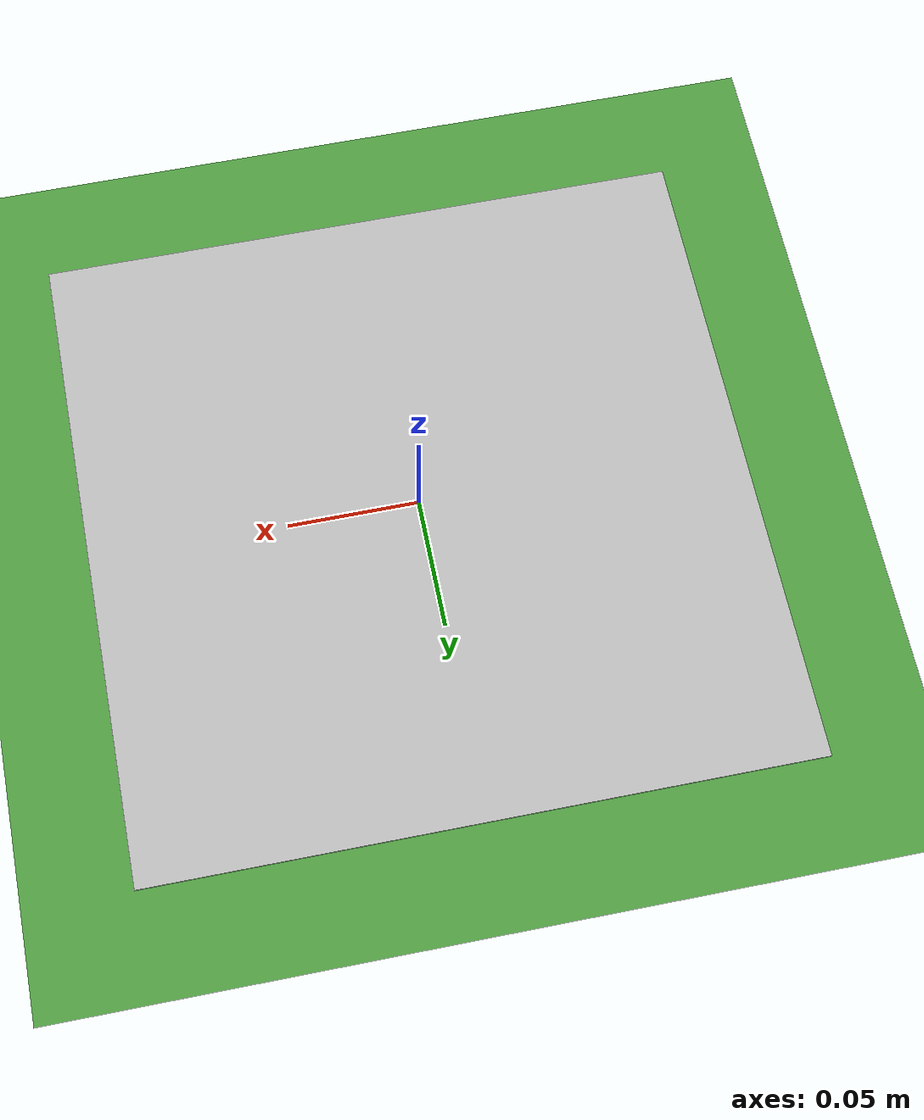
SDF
<?xml version="1.0" ?>
<?xml-model href="http://sdformat.org/schemas/root.xsd" schematypens="http://www.w3.org/2001/XMLSchema"?>
<sdf version="1.5">
  <world name="default">
<!--plugin name="ros_link_attacher_plugin" filename="libgazebo_ros_link_attacher.so"/-->
    <spherical_coordinates>
      <surface_model>EARTH_WGS84</surface_model>
      <latitude_deg>37.411802</latitude_deg>
      <longitude_deg>-121.995739</longitude_deg>
      <elevation>0.0</elevation>
      <heading_deg>0</heading_deg>
    </spherical_coordinates>

    <physics name="default_physics" default="0" type="ode">
      <gravity>0 0 -9.8066</gravity>
      <ode>
        <solver>
          <type>quick</type>
          <iters>50</iters>
          <sor>1.0</sor>
          <use_dynamic_moi_rescaling>0</use_dynamic_moi_rescaling>
        </solver>
        <constraints>
          <cfm>0</cfm>
          <erp>0.2</erp>
          <contact_max_correcting_vel>1000</contact_max_correcting_vel>
          <contact_surface_layer>0.001</contact_surface_layer>
        </constraints>
      </ode>
      <max_step_size>0.002</max_step_size>
      <real_time_factor>1</real_time_factor>
      <real_time_update_rate>500</real_time_update_rate>
      <magnetic_field>6.0e-06 2.3e-05 -4.2e-05</magnetic_field>
    </physics>

    <scene>
      <shadows>false</shadows>
      <sky>
        <clouds/>
      </sky>
    </scene>

    <light type="directional" name="sun">
      <cast_shadows>false</cast_shadows>
      <pose>250 250 600 0 0 0</pose>
      <diffuse>0.8 0.8 0.8 1</diffuse>
      <specular>0.2 0.2 0.2 1</specular>
      <attenuation>
        <range>1000</range>
        <constant>0.9</constant>
        <linear>0.01</linear>
        <quadratic>0.001</quadratic>
      </attenuation>
      <direction>0 0 -1</direction>
    </light>

    <model name="ground_plane">
      <static>true</static>
      <link name="link">
        <collision name="collision">
          <pose>0 0 0 0 0 0</pose>
          <geometry>
            <plane>
              <normal>0 0 1</normal>
              <size>250 250</size>
            </plane>
          </geometry>
          <surface>
            <friction>
              <ode>
                <mu>1</mu>
                <mu2>1</mu2>
              </ode>
            </friction>
          </surface>
        </collision>
        <visual name="grass">
          <pose>0 0 0 0 0 0</pose>
          <cast_shadows>false</cast_shadows>
          <geometry>
            <plane>
              <normal>0 0 1</normal>
              <size>150 250</size>
            </plane>
          </geometry>
          <material>
            <script>
              <uri>file://media/materials/scripts/Gazebo.material</uri>
              <name>Gazebo/Grass</name>
            </script>
          </material>
        </visual>
      </link>
    </model>

  <model name="apriltag">
	  <static>1</static>
	<link name="link">
      <pose>0 0 0 0 0 0</pose>
      <inertial>
        <mass>0.01</mass>
        <inertia>
          <ixx>0.08611666666666669</ixx>
          <ixy>0</ixy>
          <ixz>0</ixz>
          <iyy>0.08611666666666669</iyy>
          <iyz>0</iyz>
          <izz>0.08611666666666669</izz>
        </inertia>
      </inertial>

      <collision name="collision_apriltag">
        <pose>0 0 0 0 0 0</pose>
        <geometry>
          <box>
            <size>0.25 0.25 0.001</size>
          </box>
        </geometry>
        <surface>
          <contact>
            <poissons_ratio>0.347</poissons_ratio>
            <elastic_modulus>8.8e+09</elastic_modulus>
            <ode>
              <kp>100000</kp>
              <kd>100</kd>
              <max_vel>100.0</max_vel>
              <min_depth>0.001</min_depth>
            </ode>
          </contact>
          <friction>
            <torsional>
              <coefficient>1.0</coefficient>
              <use_patch_radius>0</use_patch_radius>
              <surface_radius>0.01</surface_radius>
            </torsional>
          </friction>
        </surface>
      </collision>

      <visual name="visual_apriltag">
        <pose>0 0 0 0 0 0</pose>
        <geometry>
          <box>
            <size>0.25 0.25 0.001</size>
          </box>
        </geometry>
        <material>
          <script>
            <uri>model://apriltag/scripts</uri>
            <uri>model://apriltag/materials/textures</uri>
            <name>Apriltag/Apriltag</name>
          </script>
        </material>
      </visual>

    </link>
  </model>

    <gui>
      <camera name="camera">
        <pose>-20 0 20 0 0.6 0.89</pose>
        <horizontal_fov>1.5</horizontal_fov>
      </camera>
    </gui>
  </world>
</sdf>
